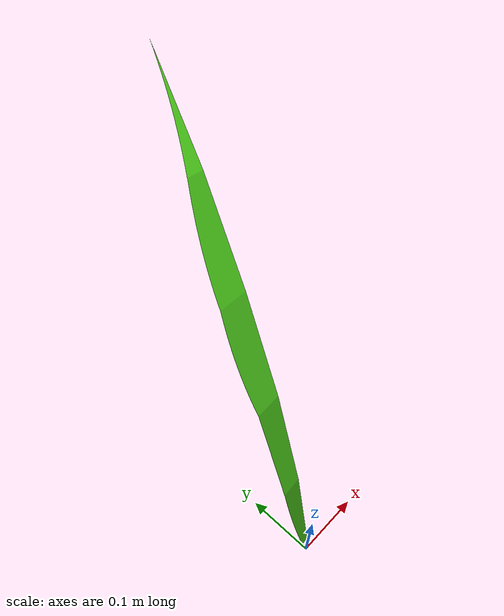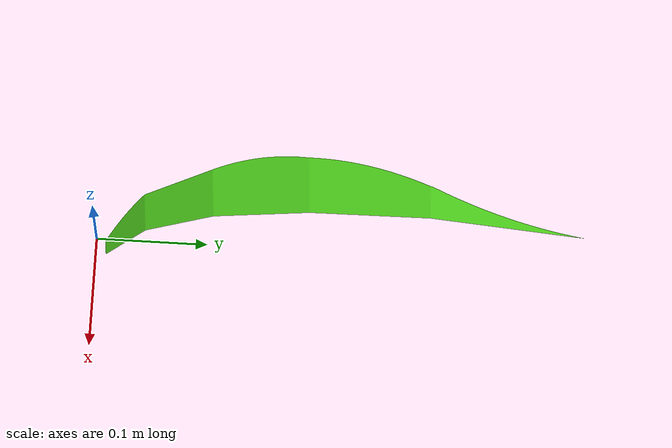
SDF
<?xml version='1.0'?>
<sdf version='1.6'>
  <model name='plant_2_single'>
    <link name='link_2'>
      <pose frame=''>-0.001376 0.005605 -0.013505 0 0 -1.02494</pose>
      <inertial>
        <mass>1</mass>
        <inertia>
          <ixx>0.166667</ixx>
          <ixy>0</ixy>
          <ixz>0</ixz>
          <iyy>0.166667</iyy>
          <iyz>0</iyz>
          <izz>0.166667</izz>
        </inertia>
        <pose frame=''>0 0 0 0 -0 0</pose>
      </inertial>
      <gravity>1</gravity>
      <self_collide>0</self_collide>
      <kinematic>0</kinematic>
      <visual name='visual'>
        <pose frame=''>0 0 0 0 -0 0</pose>
        <geometry>
          <mesh>
            <uri>model://plant_2/meshes/leaf2.dae</uri>
            <scale>1 1 1</scale>
          </mesh>
        </geometry>
        <material>
          <lighting>1</lighting>
          <script>
            <uri>file://media/materials/scripts/gazebo.material</uri>
            <name>Gazebo/Grey</name>
          </script>
          <ambient>0.329 0.87 0.117 1</ambient>
          <diffuse>0.329 0.87 0.117 1</diffuse>
          <specular>0.01 0.01 0.01 1</specular>
          <emissive>0 0 0 1</emissive>
          <shader type='vertex'>
            <normal_map>__default__</normal_map>
          </shader>
        </material>
        <cast_shadows>1</cast_shadows>
        <transparency>0</transparency>
      </visual>
      <collision name='collision'>
        <laser_retro>0</laser_retro>
        <max_contacts>10</max_contacts>
        <pose frame=''>0 0 0 0 -0 0</pose>
        <geometry>
          <mesh>
            <uri>model://plant_2/meshes/leaf2.dae</uri>
            <scale>1 1 1</scale>
          </mesh>
        </geometry>
         </collision>
    </link>

    <static>1</static>
    <allow_auto_disable>1</allow_auto_disable>
  </model>
</sdf>
